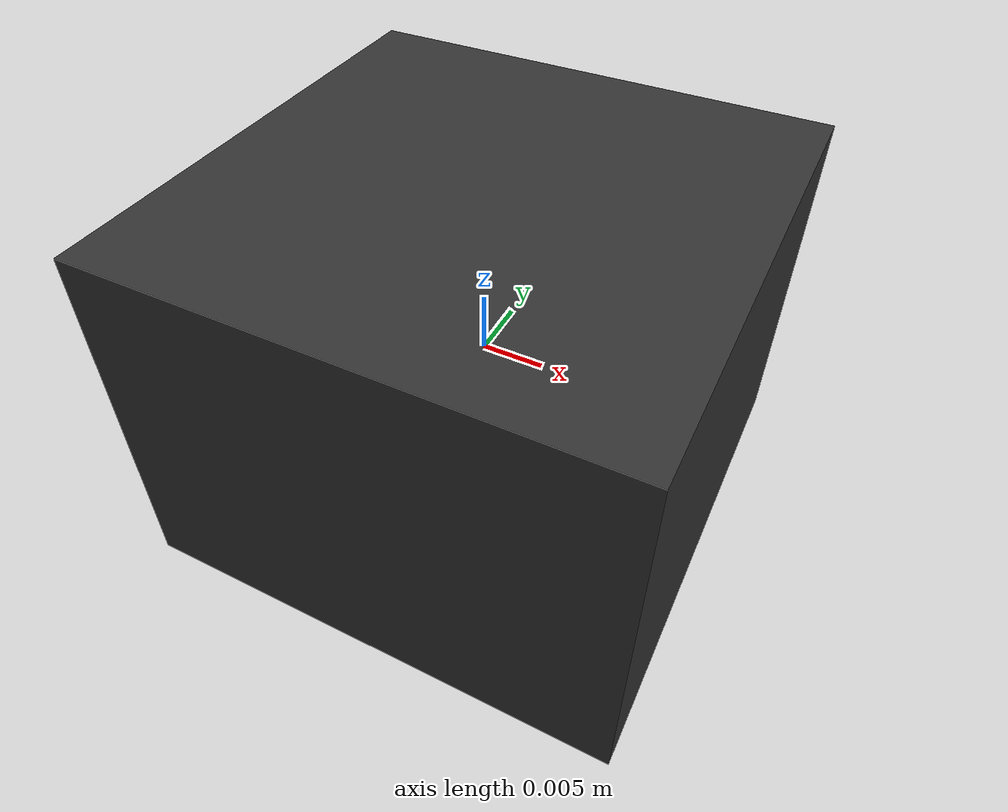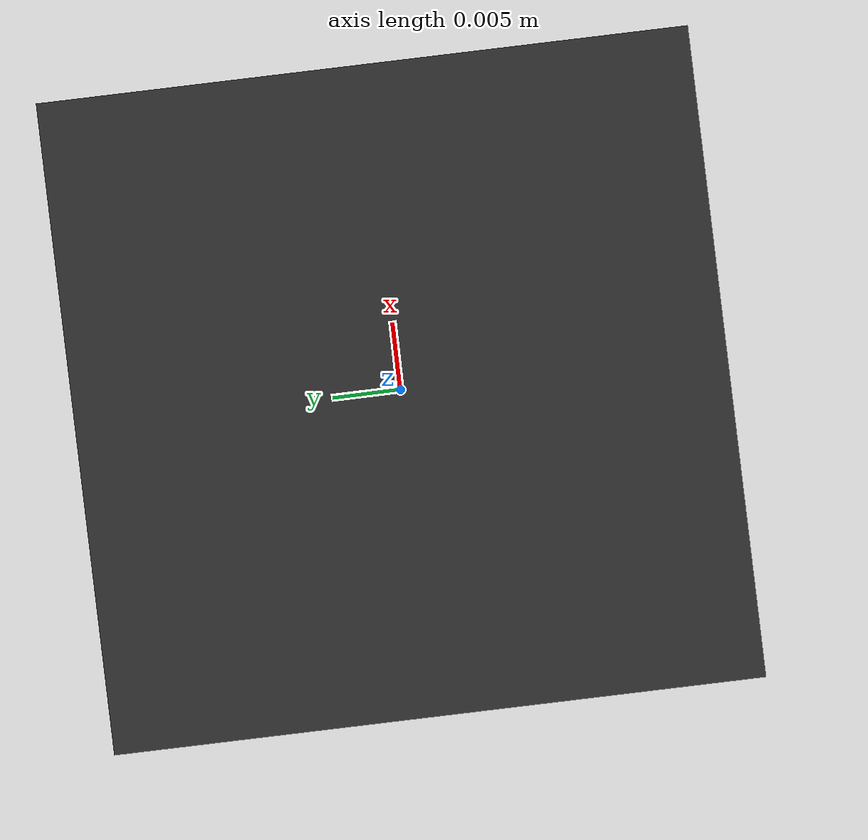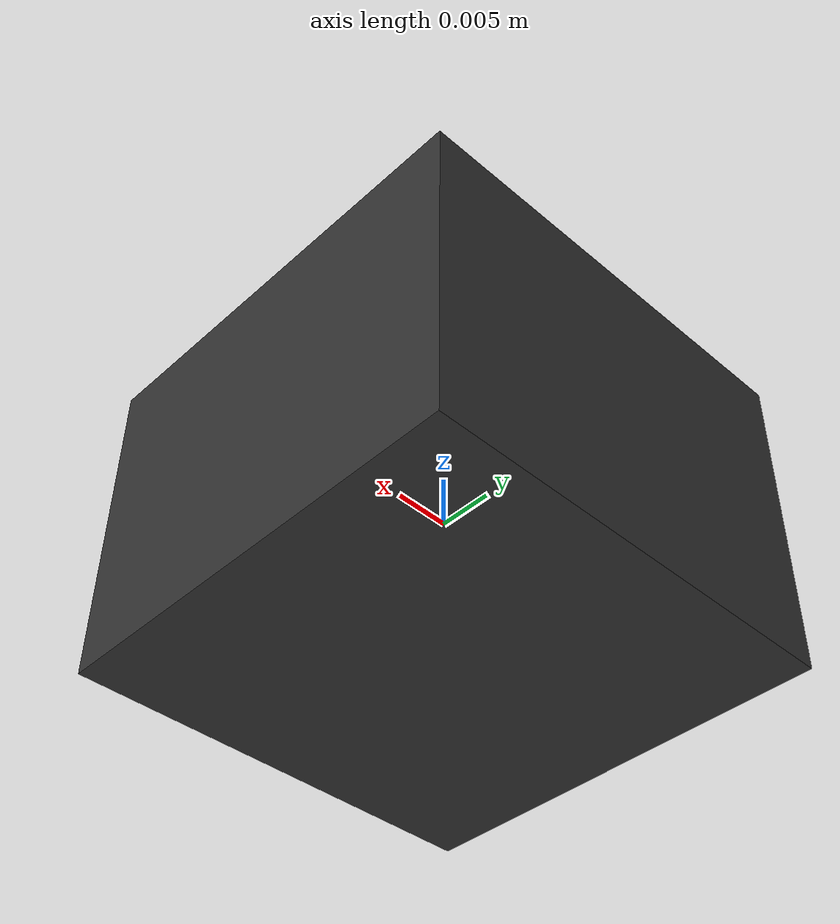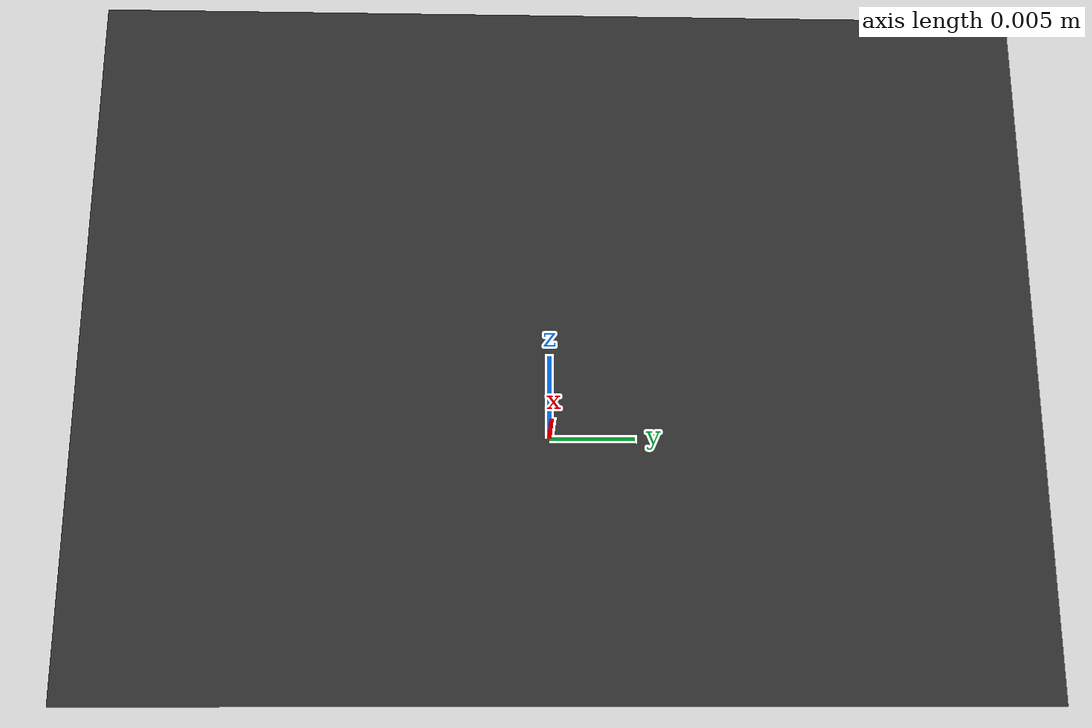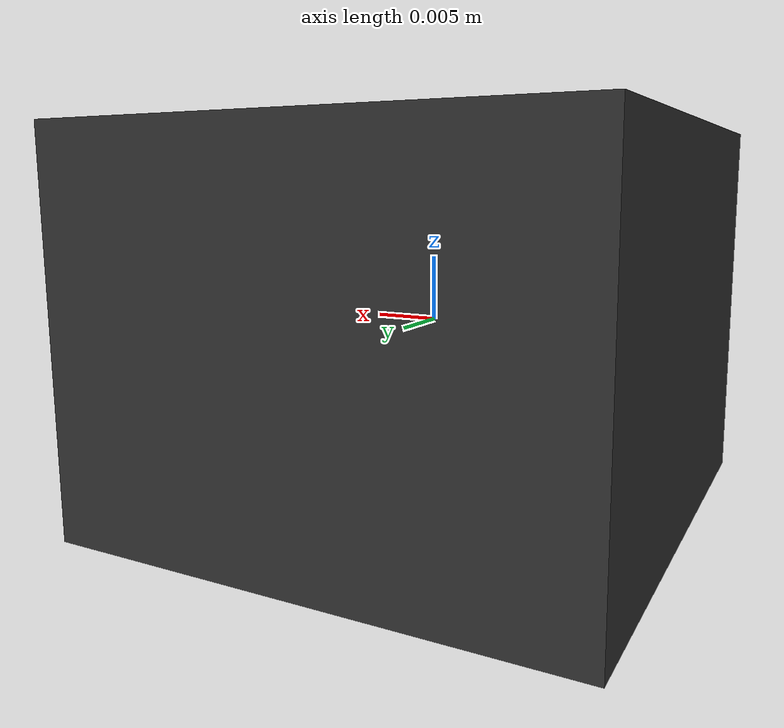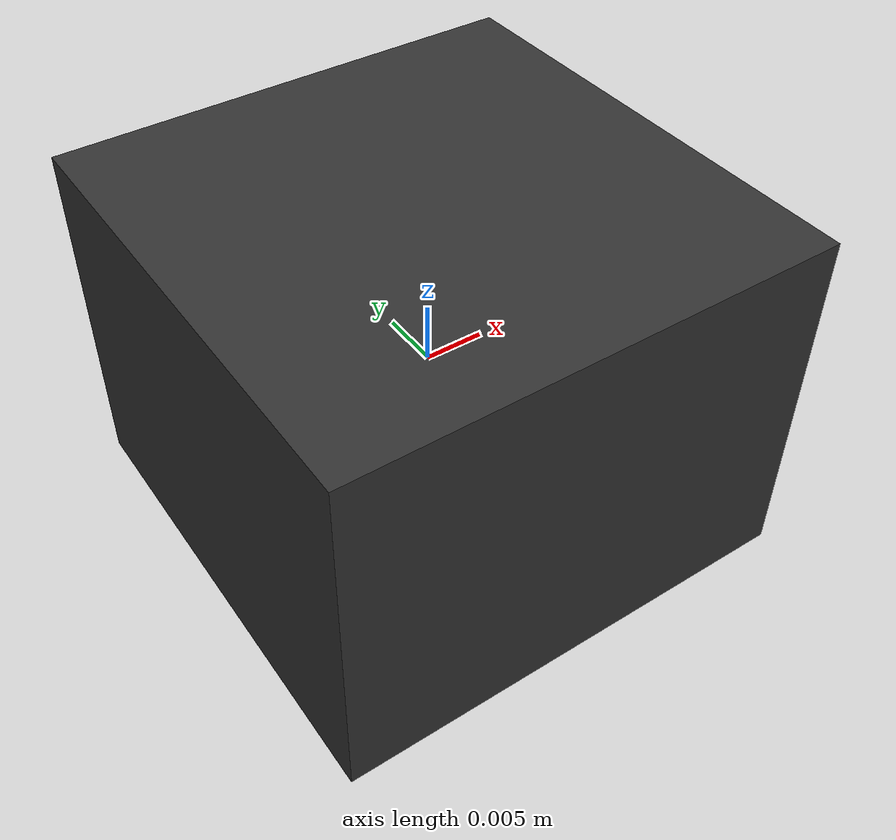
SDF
<?xml version="1.0"?>
<sdf version="1.9">
  <model name="simple_rgb_camera">
    <static>false</static>

    <link name="camera_body">
      <pose>0 0 0 0 0 0</pose>

      <inertial>
        <mass>0.03</mass>
        <inertia>
          <ixx>1e-05</ixx>
          <iyy>1e-05</iyy>
          <izz>1e-05</izz>
          <ixy>0.0</ixy>
          <ixz>0.0</ixz>
          <iyz>0.0</iyz>
        </inertia>
      </inertial>

      <collision name="camera_collision">
        <geometry>
          <box>
            <size>0.04 0.04 0.03</size>
          </box>
        </geometry>
      </collision>

      <visual name="camera_visual">
        <geometry>
          <box>
            <size>0.04 0.04 0.03</size>
          </box>
        </geometry>
        <material>
          <ambient>0.1 0.1 0.1 1</ambient>
          <diffuse>0.2 0.2 0.2 1</diffuse>
          <specular>0.01 0.01 0.01 1</specular>
        </material>
      </visual>

      <sensor name="rgb_camera" type="camera">
        <pose>0 0 0 0 0 0</pose>
        <always_on>true</always_on>
        <update_rate>20</update_rate>
        <visualize>false</visualize>
        <topic>/camera/image_raw</topic>

        <camera name="front_camera_sensor">
          <camera_info_topic>/camera/camera_info</camera_info_topic>
          <optical_frame_id>camera_optical_frame</optical_frame_id>

          <!-- Yaklaşık 90 derece yatay görüş -->
          <horizontal_fov>1.5708</horizontal_fov>

          <image>
            <width>640</width>
            <height>480</height>
            <format>R8G8B8</format>
          </image>

          <clip>
            <near>0.05</near>
            <far>50.0</far>
          </clip>

          <!-- 640x480 ve 90 derece HFOV için yaklaşık intrinsics -->
          <intrinsics>
            <fx>320.0</fx>
            <fy>320.0</fy>
            <cx>320.0</cx>
            <cy>240.0</cy>
            <s>0.0</s>
          </intrinsics>

          <noise>
            <type>gaussian</type>
            <mean>0.0</mean>
            <stddev>0.002</stddev>
          </noise>
        </camera>
      </sensor>
    </link>
  </model>
</sdf>
